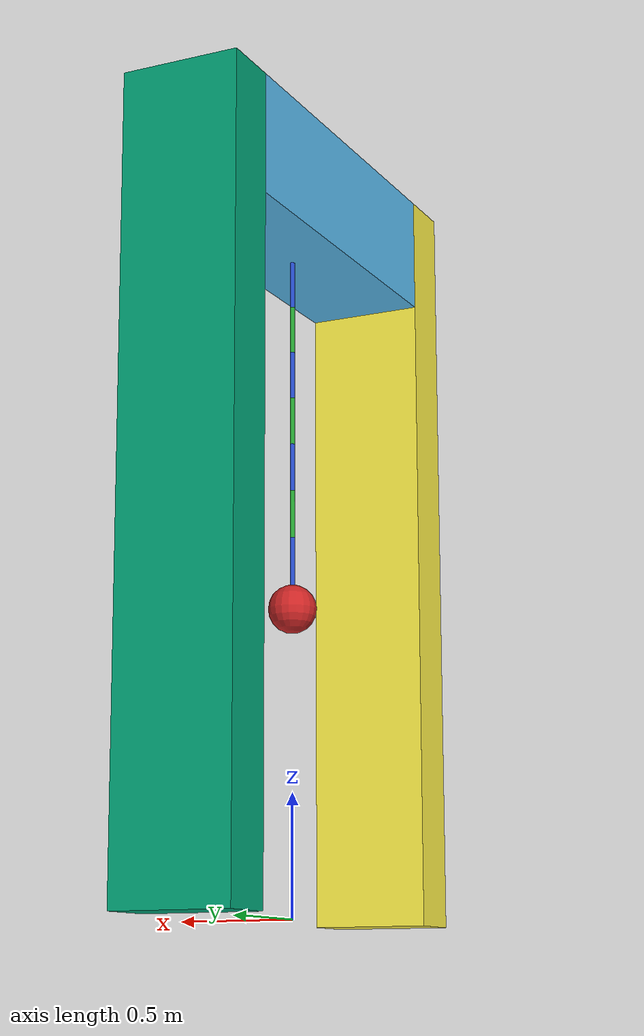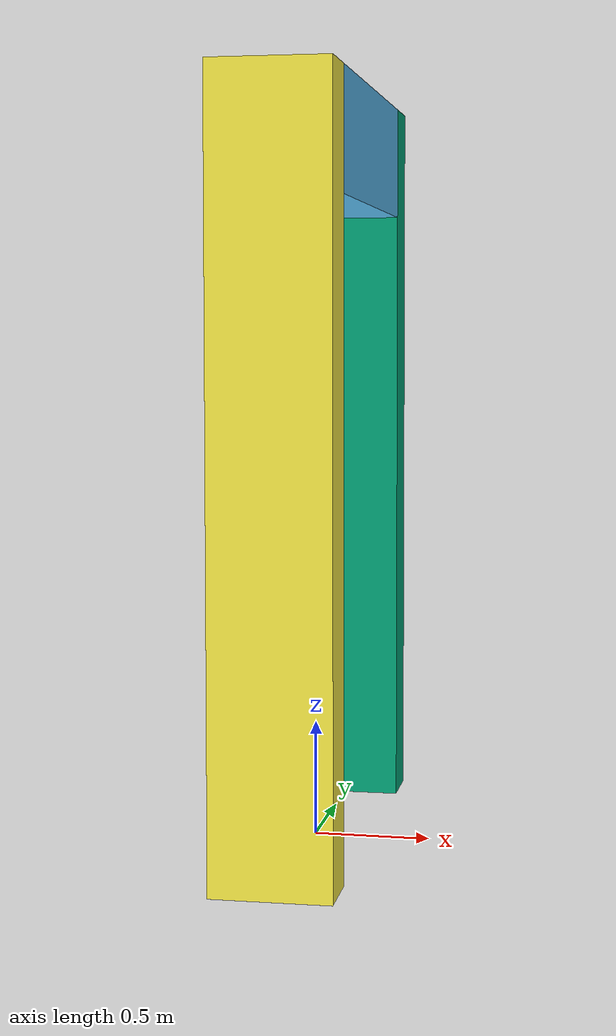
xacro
<?xml version="1.0"?>
<robot xmlns:xacro="http://www.ros.org/wiki/xacro" name="myrobot">

	<xacro:property name="width" value="0.02"/>
	<xacro:property name="width_1" value="0.01"/>
	<xacro:property name="body_len" value="0.2"/>
	<xacro:property name="box_param" value="0.5"/>
	<xacro:property name="box_param1" value="0.25"/>
	<xacro:property name="spawn_point" value="3"/>
	<xacro:property name="radius" value="0.1"/>
	<xacro:property name="small" value="0.005"/>
	<xacro:property name="load_mass" value="10"/> 		<!-- [kg] -->
	<xacro:property name="friction" value="0.05"/>         <!-- trenje zgloba -->
	<xacro:property name="damping1"  value="0.2"/>        <!-- prigušenje zgloba -->
	<xacro:property name="effort_joint" value="1000"/>
	<xacro:property name="large" value="100"/>
	<xacro:property name="inertia_rope" value="0.1"/>
	<xacro:property name="mass_rope" value="0.1"/>
	<xacro:property name="mass_link" value="0.0001"/>  <!-- masa imaginarnog  clanka [kg] -->
	<xacro:property name="inertia_link" value="0.0001"/> <!-- inercija imaginarnog clanka -->
	<xacro:property name="velocity_joint" value="300"/>

		<!-- small - inertia of imaginary links that were needed to create ball joint - undefined value
				smaller value - acts as a spring,  bigger value- to stiff -->

		<!-- MACRO ARGUMETS EXPLANATION-->
		<!-- width - 2*width is the width of the first rigid link (base of the rope, hook) -->
		<!-- width_1 - 2*width_1 is the width of the every other rigif link (series of connected rigid links with ball joints represents a rope-->
		<!-- body_len - length of the link (cylinder with radius = width_1 and length=body_len-->
		<!-- box param - length of the edge of the box that represents base link to which rope is attached-->
		<!-- spawn_point = z value in relation to the origin of the world for base link-->
		<!-- radius = radius of the load that is represented as a sphere-->
		<!-- small = very small value that is needed for inertia element of every infintensimaly small link -->
		<!-- load_mass = mass of the load that is carried by rope-->
		<!-- rope_mass = mass of the links that create rope, in order to generate inertia (1/12*mass*height)+1/4*mass*radius^2)-->

		<!-- REFERENCE FRAME/CHILD/PARENT http://wiki.ros.org/urdf/XML/joint/-->
		<!-- SDF documentation: http://sdformat.org/ -->
		<!-- xacro(XML macro): http://wiki.ros.org/xacro -->
		<!-- URDF in GAZEBO: http://gazebosim.org/tutorials/?tut=ros_urdf#%3Cgazebo%3Eelementforthetag -->
		<!-- URDF tutorials:http://wiki.ros.org/urdf/Tutorials -->
		<!-- Gravity disable: http://answers.gazebosim.org/question/13416/how-to-disable-gravity-only-for-a-specific-model-in-gazebo/ -->
		<!-- WORLD_TO_BASE fixed joint - TF between base and world -->
		<!-- NEXT_STEPS NEXT_STEPS NEXT_STEPS -->
		<!-- CREATE BALL LINK - series of revolute joints or infitensimaly small links connected with simple revolute/revolute joints-->
		<!-- PHYSICS THE ROPE, INERTIA ELEMENTS FOR ROPE AND LOAD SHOULD BE CALCULATED, DONE -->
		<!-- STANDARD UNITS OF MEASURE AND COORDINATE CONVENTION : http://www.ros.org/reps/rep->13.html -->
		<!-- XACRO PROPERTIES, LAUNCH FILE AUTOMATICALLY CONVERTS XACRO TO URDF -->
		<!-- DIFFERENT LOAD, DIFFERENT INERTIA ELEMENT, FUNCTION THAT CREATES LOAD DEPENDENT ON ITS SHAPE-->

		<link name="world"/>

		<link name="base_link">
			<visual>
				<geometry>
					<box size="${box_param} ${3*box_param} ${box_param}"/>
				</geometry>
			</visual>

			<collision>
				<geometry>
					<box size="${box_param} ${3*box_param} ${box_param}"/>
				</geometry>
			</collision>

			<inertial>
			<mass value="${small}"/>
			<inertia
				ixx="${small}" ixy="0.0" ixz="0.0"
        		iyy="${small}" iyz="0.0"
        		izz="${small}"/>
        	<origin xyz="0 0 ${spawn_point}" rpy="0 0 0"/>
			</inertial>

		</link>

		<link name="leg1">
			<visual>
				<geometry>
					<box size="${box_param} ${box_param1} ${spawn_point+box_param/2}"/>
				</geometry>
					<origin xyz="0 0 ${-spawn_point/2}" rpy="0 0 0"/>
			</visual>

			<collision>
				<geometry>
					<box size="${box_param} ${box_param1} ${spawn_point+box_param/2}"/>
				</geometry>
					<origin xyz="0 0 ${-spawn_point/2}" rpy="0 0 0"/>
			</collision>

			<inertial>
			<mass value="${large}"/>
			<inertia
				ixx="${large}" ixy="0.0" ixz="0.0"
        		iyy="${large}" iyz="0.0"
        		izz="${large}"/>
        	<origin xyz="0 ${3*box_param} ${spawn_point/2}" rpy="0 0 0"/>
			</inertial>
		</link>

		<link name="leg2">
			<visual>
				<geometry>
					<box size="${box_param} ${box_param1} ${spawn_point+box_param/2}"/>
				</geometry>
				<origin xyz="0 0 ${-spawn_point/2}" rpy="0 0 0"/>
			</visual>

			<collision>
				<geometry>
					<box size="${box_param} ${box_param1} ${spawn_point+box_param/2}"/>
				</geometry>
				<origin xyz="0 0 ${-spawn_point/2}" rpy="0 0 0"/>
			</collision>

			<inertial>
				<mass value="${large}"/>
				<inertia
					ixx="${large}" ixy="0.0" ixz="0.0"
        			iyy="${large}" iyz="0.0"
        			izz="${large}"/>
        		<origin xyz="0 ${-3*box_param} ${-spawn_point/2}" rpy="0 0 0"/>
			</inertial>

		</link>

		<link name="rope_1">
			<visual>
				<geometry>
					<cylinder radius="${width_1}" length="${body_len}"/>
				</geometry>
				<origin xyz="0 0 ${-body_len/2}" rpy="0 0 0"/>
			</visual>
			<collision>
				<geometry>
					<cylinder radius="${width_1}" length="${body_len}"/>
				</geometry>
				<origin xyz="0  0 ${-body_len/2}" rpy="0 0 0"/>
			</collision>

			<inertial>
				<mass value="${mass_rope}"/>
				<inertia
					ixx="${inertia_rope}" ixy="0.0" ixz="0.0"
        			iyy="${inertia_rope}" iyz="0.0"
        			izz="${inertia_rope}"/>
        		<origin xyz="0 0 ${-body_len/2}" rpy="0 0 0"/>
			</inertial>

		</link>

		<link name="rope_2">
			<visual>
				<geometry>
					<cylinder radius="${width_1}" length="${body_len}"/>
				</geometry>
				<origin xyz="0 0 ${-body_len/2}" rpy="0 0 0"/>
			</visual>
			<collision>
				<geometry>
					<cylinder radius="${width_1}" length="${body_len}"/>
				</geometry>
				<origin xyz="0 0 ${-body_len/2}" rpy="0 0 0"/>
			</collision>

			<inertial>
				<mass value="${mass_rope}"/>
				<inertia
					ixx="${inertia_rope}" ixy="0.0" ixz="0.0"
        			iyy="${inertia_rope}" iyz="0.0"
        			izz="${inertia_rope}"/>
        		<origin xyz="0 0 ${-body_len/2}" rpy="0 0 0"/>
			</inertial>
		</link>

		<link name="rope_3">
			<visual>
				<geometry>
					<cylinder radius="${width_1}" length="${body_len}"/>
				</geometry>
				<origin xyz="0 0 ${-body_len/2}" rpy="0 0 0"/>
			</visual>
			<collision>
				<geometry>
					<cylinder radius="${width_1}" length="${body_len}"/>
				</geometry>
				<origin xyz="0 0 ${-body_len/2}" rpy="0 0 0"/>
			</collision>

			<inertial>
				<mass value="${mass_rope}"/>

				<inertia
					ixx="${inertia_rope}" ixy="0.0" ixz="0.0"
        			iyy="${inertia_rope}" iyz="0.0"
        			izz="${inertia_rope}"/>
        		<origin xyz="0 0 ${-body_len/2}" rpy="0 0 0"/>
			</inertial>
		</link>

		<link name="rope_4">
			<visual>
				<geometry>
					<cylinder radius="${width_1}" length="${body_len}"/>
				</geometry>
				<origin xyz="0 0 ${-body_len/2}" rpy="0 0 0"/>
			</visual>
			<collision>
				<geometry>
					<cylinder radius="${width_1}" length="${body_len}"/>
				</geometry>
				<origin xyz="0 0 ${-body_len/2}" rpy="0 0 0"/>
			</collision>

			<inertial>
				<mass value="${mass_rope}"/>

				<inertia
					ixx="${inertia_rope}" ixy="0.0" ixz="0.0"
        			iyy="${inertia_rope}" iyz="0.0"
        			izz="${inertia_rope}"/>

        		<origin xyz="0 0 ${-body_len/2}" rpy="0 0 0"/>
			</inertial>
		</link>

		<link name="rope_5">
			<visual>
				<geometry>
					<cylinder radius="${width_1}" length="${body_len}"/>
				</geometry>
				<origin xyz="0 0 ${-body_len/2}" rpy="0 0 0"/>
			</visual>
			<collision>
				<geometry>
					<cylinder radius="${width_1}" length="${body_len}"/>
				</geometry>
				<origin xyz="0 0 ${-body_len/2}" rpy="0 0 0"/>
			</collision>

			<inertial>
				<mass value="${mass_rope}"/>

				<inertia
					ixx="${inertia_rope}" ixy="0.0" ixz="0.0"
        			iyy="${inertia_rope}" iyz="0.0"
        			izz="${inertia_rope}"/>
        		<origin xyz="0 0 ${-body_len/2}" rpy="0 0 0"/>
			</inertial>
		</link>

		<link name="rope_6">
			<visual>
				<geometry>
					<cylinder radius="${width_1}" length="${body_len}"/>
				</geometry>
				<origin xyz="0 0 ${-body_len/2}" rpy="0 0 0"/>
			</visual>
			<collision>
				<geometry>
					<cylinder radius="${width_1}" length="${body_len}"/>
				</geometry>
				<origin xyz="0 0 ${-body_len/2}" rpy="0 0 0"/>
			</collision>

			<inertial>
				<mass value="${mass_rope}"/>

				<inertia
					ixx="${inertia_rope}" ixy="0.0" ixz="0.0"
        			iyy="${inertia_rope}" iyz="0.0"
        			izz="${inertia_rope}"/>
        		<origin xyz="0 0 ${-body_len/2}" rpy="0 0 0"/>
			</inertial>
		</link>

		<link name="rope_7">
			<visual>
				<geometry>
					<cylinder radius="${width_1}" length="${body_len}"/>
				</geometry>
				<origin xyz="0 0 ${-body_len/2}" rpy="0 0 0"/>
			</visual>
			<collision>
				<geometry>
					<cylinder radius="${width_1}" length="${body_len}"/>
				</geometry>
				<origin xyz="0 0 ${-body_len/2}" rpy="0 0 0"/>
			</collision>

			<inertial>
				<mass value="${mass_rope}"/>

				<inertia
					ixx="${inertia_rope}" ixy="0.0" ixz="0.0"
        			iyy="${inertia_rope}" iyz="0.0"
        			izz="${inertia_rope}"/>
        		<origin xyz="0 0 ${-body_len/2}" rpy="0 0 0"/>
			</inertial>
		</link>

		<link name="load">
			<visual>
				<geometry>
					<sphere radius="${radius}"/>
				</geometry>
				<origin xyz="0 0 ${-radius}" rpy="0 0 0"/>
			</visual>

			<collision>
				<geometry>
					<sphere radius="${radius}"/>
				</geometry>
				<origin xyz="0 0 ${-radius}" rpy="0 0 0"/>
			</collision>

			<inertial>
				<mass value="${load_mass}"/>
				<inertia
					ixx="${(2/5)*load_mass*radius*radius}" ixy="0.0" ixz="0.0"
					iyy="${(2/5)*load_mass*radius*radius}" iyz="0.0"
					izz="${(2/5)*load_mass*radius*radius}"/>
				<origin xyz="0 0 ${-radius}" rpy="0 0 0"/>
			</inertial>

		</link>

		<joint name="world_to_base_link" type="fixed">
				<parent link="world"/>
				<child link="base_link"/>
				<origin xyz="0 0 ${spawn_point}"/>

		</joint>

		<joint name="leg1_base_link" type="fixed">
				<parent link="base_link"/>
				<child link="leg1"/>
				<origin xyz="0 ${3*box_param/2+box_param1/2} ${box_param/4}"/>
		</joint>

		<joint name="leg2_base_link" type="fixed">
				<parent link="base_link"/>
				<child link="leg2"/>
				<origin xyz="0 ${-(3*box_param/2+box_param1/2)} ${box_param/4}"/>
		</joint>

		<joint name="baselink_to_rope1Psi" type="revolute">
			<parent link="base_link"/>
			<child link="rope_1Psi_link"/>
			<origin xyz="0 0 ${-box_param/2}"/>
			<axis xyz="0 0 1"/>
			<dynamics damping="${damping1}" friction="${friction}"/>
			<limit lower="${-pi/16}" upper="${pi/16}" effort="${effort_joint}" velocity="${velocity_joint}"/>
		</joint>

		<link name="rope_1Psi_link">
			<inertial>
				<mass value="${mass_link}"/>
				<inertia
					ixx="${inertia_link}" ixy="0.0" ixz="0.0"
					iyy="${inertia_link}" iyz="0.0"
					izz="${inertia_link}"/>
			</inertial>
		</link>

		<joint name="rope1Psi_to_rope1Theta" type="revolute">
			<parent link="rope_1Psi_link"/>
			<child link="rope_1Theta_link"/>
			<axis xyz="0 1 0"/>
			<dynamics damping="${damping1}" friction="${friction}"/>
			<limit lower="${-pi/2}" upper="${pi/2}" effort="${effort_joint}" velocity="${velocity_joint}"/>
		</joint>

		<link name="rope_1Theta_link">
			<inertial>
				<mass value="${mass_link}"/>
				<inertia
					ixx="${inertia_link}" ixy="0.0" ixz="0.0"
					iyy="${inertia_link}" iyz="0.0"
					izz="${inertia_link}"/>
			</inertial>
		</link>

		<joint name="rope1Theta_to_rope1" type="revolute">
			<parent link="rope_1Theta_link"/>
			<child link="rope_1"/>
			<axis xyz="1 0 0"/>
			<dynamics damping="${damping1}" friction="${friction}"/>
			<limit lower="${-pi/2}" upper="${pi/2}" effort="${effort_joint}" velocity="${velocity_joint}"/>
		</joint>

		<joint name="rope1_to_rope2Psi" type="revolute">
			<parent link="rope_1"/>
			<child link="rope_2Psi_link"/>
			<origin xyz="0 0 ${-body_len}"/>
			<axis xyz="0 0 1"/>
			<dynamics damping="${damping1}" friction="${friction}"/>
			<limit lower="${-pi/16}" upper="${pi/16}" effort="${effort_joint}" velocity="${velocity_joint}"/>
		</joint>

		<link name="rope_2Psi_link">
			<inertial>
				<mass value="${mass_link}"/>
				<inertia
					ixx="${inertia_link}" ixy="0.0" ixz="0.0"
					iyy="${inertia_link}" iyz="0.0"
					izz="${inertia_link}"/>
			</inertial>
		</link>

		<joint name="rope2Psi_to_rope2Theta" type="revolute">
			<parent link="rope_2Psi_link"/>
			<child link="rope_2Theta_link"/>
			<axis xyz="0 1 0"/>
			<dynamics damping="${damping1}" friction="${friction}"/>
			<limit lower="${-pi/2}" upper="${pi/2}" effort="${effort_joint}" velocity="${velocity_joint}"/>
		</joint>

		<link name="rope_2Theta_link">
			<inertial>
				<mass value="${mass_link}"/>
				<inertia
					ixx="${inertia_link}" ixy="0.0" ixz="0.0"
					iyy="${inertia_link}" iyz="0.0"
					izz="${inertia_link}"/>
			</inertial>
		</link>

		<joint name="rope2Theta_to_rope2" type="revolute">
			<parent link="rope_2Theta_link"/>
			<child link="rope_2"/>
			<axis xyz="1 0 0"/>
			<dynamics damping="${damping1}" friction="${friction}"/>
			<limit lower="${-pi/2}" upper="${pi/2}" effort="${effort_joint}" velocity="${velocity_joint}"/>
		</joint>

		<joint name="rope2_to_rope3Psi" type="revolute">
			<parent link="rope_2"/>
			<child link="rope_3Psi_link"/>
			<origin xyz="0 0 ${-body_len}"/>
			<axis xyz="0 0 1"/>
			<dynamics damping="${damping1}" friction="${friction}"/>
			<limit lower="${-pi/16}" upper="${pi/16}" effort="${effort_joint}" velocity="${velocity_joint}"/>
		</joint>

		<link name="rope_3Psi_link">
			<inertial>
				<mass value="${mass_link}"/>
				<inertia
					ixx="${inertia_link}" ixy="0.0" ixz="0.0"
					iyy="${inertia_link}" iyz="0.0"
					izz="${inertia_link}"/>
			</inertial>
		</link>

		<joint name="rope3Psi_to_rope3Theta" type="revolute">
			<parent link="rope_3Psi_link"/>
			<child link="rope_3Theta_link"/>
			<axis xyz="0 1 0"/>
			<dynamics damping="${damping1}" friction="${friction}"/>
			<limit lower="${-pi/2}" upper="${pi/2}" effort="${effort_joint}" velocity="${velocity_joint}"/>
		</joint>

		<link name="rope_3Theta_link">
			<inertial>
				<mass value="${mass_link}"/>
				<inertia
					ixx="${inertia_link}" ixy="0.0" ixz="0.0"
					iyy="${inertia_link}" iyz="0.0"
					izz="${inertia_link}"/>
			</inertial>
		</link>

		<joint name="rope3Theta_to_rope3" type="revolute">
			<parent link="rope_3Theta_link"/>
			<child link="rope_3"/>
			<axis xyz="1 0 0"/>
			<dynamics damping="${damping1}" friction="${friction}"/>
			<limit lower="${-pi/2}" upper="${pi/2}" effort="${effort_joint}" velocity="${velocity_joint}"/>
		</joint>

		<!-- for starters ball joint is represented as series of revolute joints -->
		<!-- doesn't work in GAZEBO, possible problem could be lack of inertial elements for imaginary links-->

		<joint name="rope3_to_rope4Psi" type="revolute">
			<parent link="rope_3"/>
			<child link="rope_4Psi_link"/>
			<origin xyz="0 0 ${-body_len}"/>
			<axis xyz="0 0 1"/>
			<dynamics damping="${damping1}" friction="${friction}"/>
			<limit lower="${-pi/16}" upper="${pi/16}" effort="${effort_joint}" velocity="${velocity_joint}"/>
		</joint>

		<link name="rope_4Psi_link">
			<inertial>
				<mass value="${mass_link}"/>
				<inertia
					ixx="${inertia_link}" ixy="0.0" ixz="0.0"
					iyy="${inertia_link}" iyz="0.0"
					izz="${inertia_link}"/>
			</inertial>
		</link>

		<joint name="rope4Psi_to_rope4Theta" type="revolute">
			<parent link="rope_4Psi_link"/>
			<child link="rope_4Theta_link"/>
			<axis xyz="0 1 0"/>
			<dynamics damping="${damping1}" friction="${friction}"/>
			<limit lower="${-pi/2}" upper="${pi/2}" effort="${effort_joint}" velocity="${velocity_joint}"/>
		</joint>

		<link name="rope_4Theta_link">
			<inertial>
				<mass value="${mass_link}"/>
				<inertia
					ixx="${inertia_link}" ixy="0.0" ixz="0.0"
					iyy="${inertia_link}" iyz="0.0"
					izz="${inertia_link}"/>
			</inertial>
		</link>

		<joint name="rope4Theta_to_rope4" type="revolute">
			<parent link="rope_4Theta_link"/>
			<child link="rope_4"/>
			<axis xyz="1 0 0"/>
			<dynamics damping="${damping1}" friction="${friction}"/>
			<limit lower="${-pi/2}" upper="${pi/2}" effort="${effort_joint}" velocity="${velocity_joint}"/>
		</joint>

		<joint name="rope4_to_rope5Psi" type="revolute">
			<parent link="rope_4"/>
			<child link="rope_5Psi_link"/>
			<origin xyz="0 0 ${-body_len}"/>
			<axis xyz="0 0 1"/>
			<dynamics damping="${damping1}" friction="${friction}"/>
			<limit lower="${-pi/16}" upper="${pi/16}" effort="${effort_joint}" velocity="${velocity_joint}"/>
		</joint>

		<link name="rope_5Psi_link">
			<inertial>
				<mass value="${mass_link}"/>
				<inertia
					ixx="${inertia_link}" ixy="0.0" ixz="0.0"
					iyy="${inertia_link}" iyz="0.0"
					izz="${inertia_link}"/>
			</inertial>
		</link>

		<joint name="rope5Psi_to_rope5Theta" type="revolute">
			<parent link="rope_5Psi_link"/>
			<child link="rope_5Theta_link"/>
			<axis xyz="0 1 0"/>
			<dynamics damping="${damping1}" friction="${friction}"/>
			<limit lower="${-pi/2}" upper="${pi/2}" effort="${effort_joint}" velocity="${velocity_joint}"/>
		</joint>

		<link name="rope_5Theta_link">
			<inertial>
				<mass value="${mass_link}"/>
				<inertia
					ixx="${inertia_link}" ixy="0.0" ixz="0.0"
					iyy="${inertia_link}" iyz="0.0"
					izz="${inertia_link}"/>
			</inertial>
		</link>

		<joint name="rope5Theta_to_rope5" type="revolute">
			<parent link="rope_5Theta_link"/>
			<child link="rope_5"/>
			<axis xyz="1 0 0"/>
			<dynamics damping="${damping1}" friction="${friction}"/>
			<limit lower="${-pi/2}" upper="${pi/2}" effort="${effort_joint}" velocity="${velocity_joint}"/>
		</joint>

		<joint name="rope5_to_rope6Psi" type="revolute">
			<parent link="rope_5"/>
			<child link="rope_6Psi_link"/>
			<origin xyz="0 0 ${-body_len}"/>
			<axis xyz="0 0 1"/>
			<dynamics damping="${damping1}" friction="${friction}"/>
			<limit lower="${-pi/16}" upper="${pi/16}" effort="${effort_joint}" velocity="${velocity_joint}"/>
		</joint>

		<link name="rope_6Psi_link">
			<inertial>
				<mass value="${mass_link}"/>
				<inertia
					ixx="${inertia_link}" ixy="0.0" ixz="0.0"
					iyy="${inertia_link}" iyz="0.0"
					izz="${inertia_link}"/>
			</inertial>
		</link>

		<joint name="rope6Psi_to_rope6Theta" type="revolute">
			<parent link="rope_6Psi_link"/>
			<child link="rope_6Theta_link"/>
			<axis xyz="0 1 0"/>
			<dynamics damping="${damping1}" friction="${friction}"/>
			<limit lower="${-pi/2}" upper="${pi/2}" effort="${effort_joint}" velocity="${velocity_joint}"/>
		</joint>

		<link name="rope_6Theta_link">
			<inertial>
				<mass value="${mass_link}"/>
				<inertia
					ixx="${inertia_link}" ixy="0.0" ixz="0.0"
					iyy="${inertia_link}" iyz="0.0"
					izz="${inertia_link}"/>
			</inertial>
		</link>

		<joint name="rope6Theta_to_rope6" type="revolute">
			<parent link="rope_6Theta_link"/>
			<child link="rope_6"/>
			<axis xyz="1 0 0"/>
			<dynamics damping="${damping1}" friction="${friction}"/>
			<limit lower="${-pi/2}" upper="${pi/2}" effort="${effort_joint}" velocity="${velocity_joint}"/>
		</joint>

		<joint name="rope6_to_rope7Psi" type="revolute">
			<parent link="rope_6"/>
			<child link="rope_7Psi_link"/>
			<origin xyz="0 0 ${-body_len}"/>
			<axis xyz="0 0 1"/>
			<dynamics damping="${damping1}" friction="${friction}"/>
			<limit lower="${-pi/16}" upper="${pi/16}" effort="${effort_joint}" velocity="${velocity_joint}"/>
		</joint>

		<link name="rope_7Psi_link">
			<inertial>
				<mass value="${mass_link}"/>
				<inertia
					ixx="${inertia_link}" ixy="0.0" ixz="0.0"
					iyy="${inertia_link}" iyz="0.0"
					izz="${inertia_link}"/>
			</inertial>
		</link>

		<joint name="rope7Psi_to_rope7Theta" type="revolute">
			<parent link="rope_7Psi_link"/>
			<child link="rope_7Theta_link"/>
			<axis xyz="0 1 0"/>
			<dynamics damping="${damping1}" friction="${friction}"/>
			<limit lower="${-pi/2}" upper="${pi/2}" effort="${effort_joint}" velocity="${velocity_joint}"/>
		</joint>

		<link name="rope_7Theta_link">
			<inertial>
				<mass value="${mass_link}"/>
				<inertia
					ixx="${inertia_link}" ixy="0.0" ixz="0.0"
					iyy="${inertia_link}" iyz="0.0"
					izz="${inertia_link}"/>
			</inertial>
		</link>

		<joint name="rope7Theta_to_rope7" type="revolute">
			<parent link="rope_7Theta_link"/>
			<child link="rope_7"/>
			<axis xyz="1 0 0"/>
			<dynamics damping="${damping1}" friction="${friction}"/>
			<limit lower="${-pi/2}" upper="${pi/2}" effort="${effort_joint}" velocity="${velocity_joint}"/>
		</joint>

		<joint name="rope7_to_rope8Psi" type="revolute">
			<parent link="rope_7"/>
			<child link="rope_8Psi_link"/>
			<origin xyz="0 0 ${-body_len}"/>
			<axis xyz="0 0 1"/>
			<dynamics damping="${damping1}" friction="${friction}"/>
			<limit lower="${-pi/16}" upper="${pi/16}" effort="${effort_joint}" velocity="${velocity_joint}"/>
		</joint>

		<link name="rope_8Psi_link">
			<inertial>
				<mass value="${mass_link}"/>
				<inertia
					ixx="${inertia_link}" ixy="0.0" ixz="0.0"
					iyy="${inertia_link}" iyz="0.0"
					izz="${inertia_link}"/>
			</inertial>
		</link>

		<joint name="rope8Psi_to_rope8Theta" type="revolute">
			<parent link="rope_8Psi_link"/>
			<child link="rope_8Theta_link"/>
			<axis xyz="0 1 0"/>
			<dynamics damping="${damping1}" friction="${friction}"/>
			<limit lower="${-pi/2}" upper="${pi/2}" effort="${effort_joint}" velocity="${velocity_joint}"/>
		</joint>

		<link name="rope_8Theta_link">
			<inertial>
				<mass value="${mass_link}"/>
				<inertia
					ixx="${inertia_link}" ixy="0.0" ixz="0.0"
					iyy="${inertia_link}" iyz="0.0"
					izz="${inertia_link}"/>
			</inertial>
		</link>

		<joint name="rope8Theta_to_load" type="revolute">
			<parent link="rope_8Theta_link"/>
			<child link="load"/>
			<axis xyz="1 0 0"/>
			<dynamics damping="${damping1}" friction="${friction}"/>
			<limit lower="${-pi/2}" upper="${pi/2}" effort="${effort_joint}" velocity="${velocity_joint}"/>
		</joint>

		<gazebo reference="rope_1">
			<material>Gazebo/Blue</material>
		</gazebo>

		<gazebo reference="rope_2">
			<material>Gazebo/Green</material>
		</gazebo>

		<gazebo reference="rope_3">
			<material>Gazebo/Blue</material>
		</gazebo>

		<gazebo reference="rope_4">
			<material>Gazebo/Green</material>
		</gazebo>

		<gazebo reference="rope_5">
			<material>Gazebo/Blue</material>
		</gazebo>

		<gazebo reference="rope_6">
			<material>Gazebo/Green</material>
		</gazebo>

		<gazebo reference="rope_7">
			<material>Gazebo/Blue</material>
		</gazebo>

		<gazebo reference="load">
			<material>Gazebo/Red</material>
		</gazebo>

</robot>
